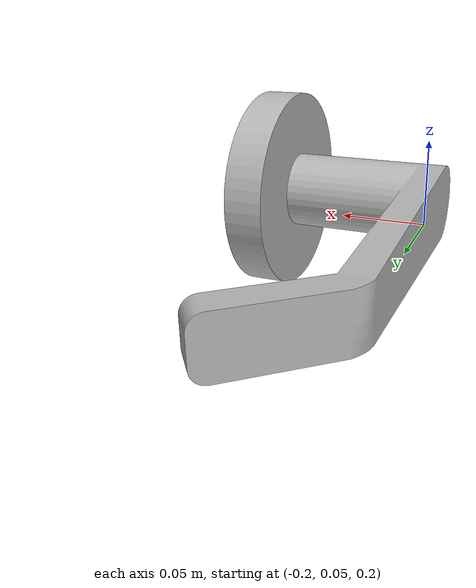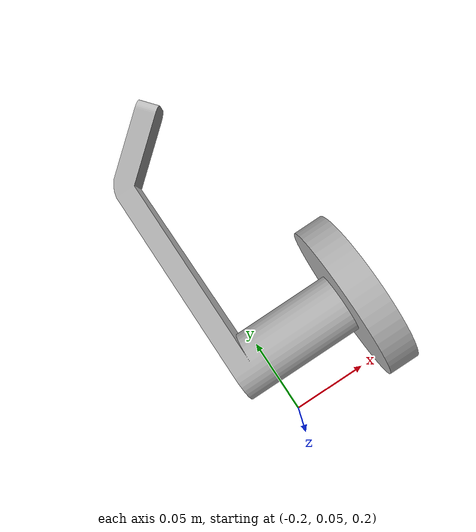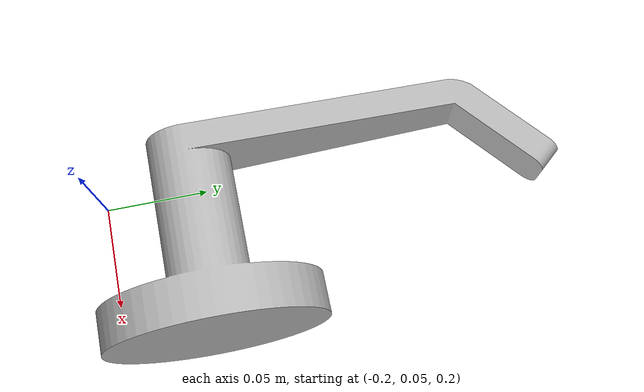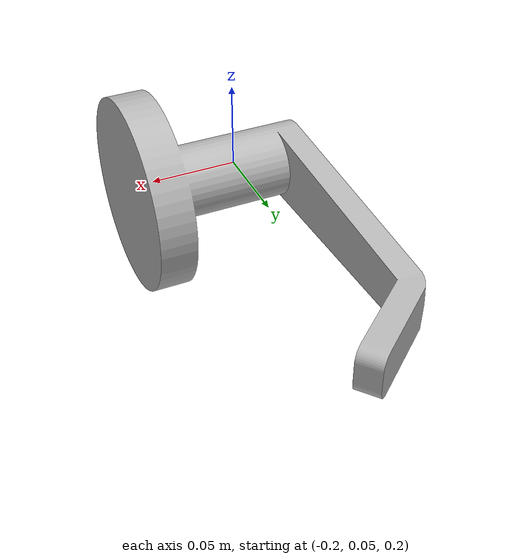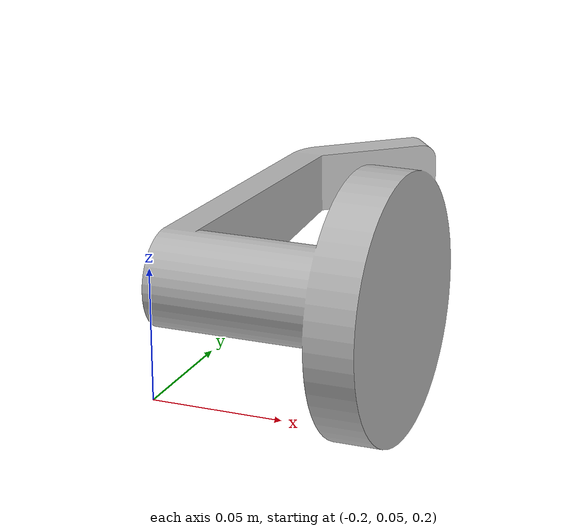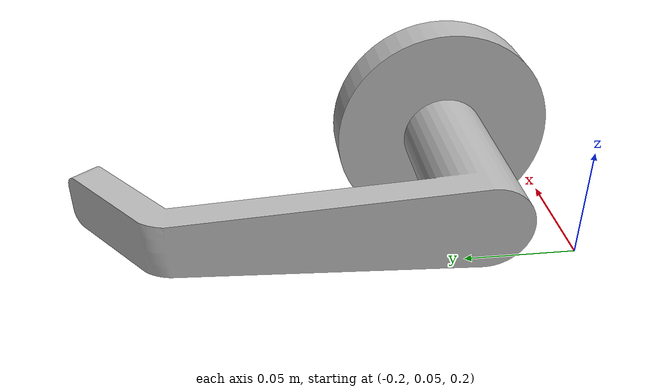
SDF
<?xml version='1.0'?>
<sdf version='1.7'>
  <model name='doorHandle'>
    <model name='door_handle'>
      <link name='handle'>
        <collision name='collision'>
          <geometry>
            <mesh>
              <uri>model://door_handle/meshes/door_handle.dae</uri>
            </mesh>
          </geometry>
          <max_contacts>10</max_contacts>
          <surface>
            <contact>
              <ode/>
            </contact>
            <bounce/>
            <friction>
              <torsional>
                <ode/>
              </torsional>
              <ode/>
            </friction>
          </surface>
        </collision>
        <visual name='visual'>
          <geometry>
            <mesh>
              <uri>model://door_handle/meshes/door_handle.dae</uri>
            </mesh>
          </geometry>
        </visual>
        <self_collide>0</self_collide>
        <inertial>
          <pose>0 0 0 0 -0 0</pose>
          <inertia>
            <ixx>1</ixx>
            <ixy>0</ixy>
            <ixz>0</ixz>
            <iyy>1</iyy>
            <iyz>0</iyz>
            <izz>1</izz>
          </inertia>
          <mass>1</mass>
        </inertial>
        <enable_wind>0</enable_wind>
        <kinematic>0</kinematic>
      </link>
      <pose>-0.121713 0.097446 0.228622 -1.57079 0.000958 1.57487</pose>
    </model>
    <static>0</static>
    <allow_auto_disable>1</allow_auto_disable>
  </model>
</sdf>
